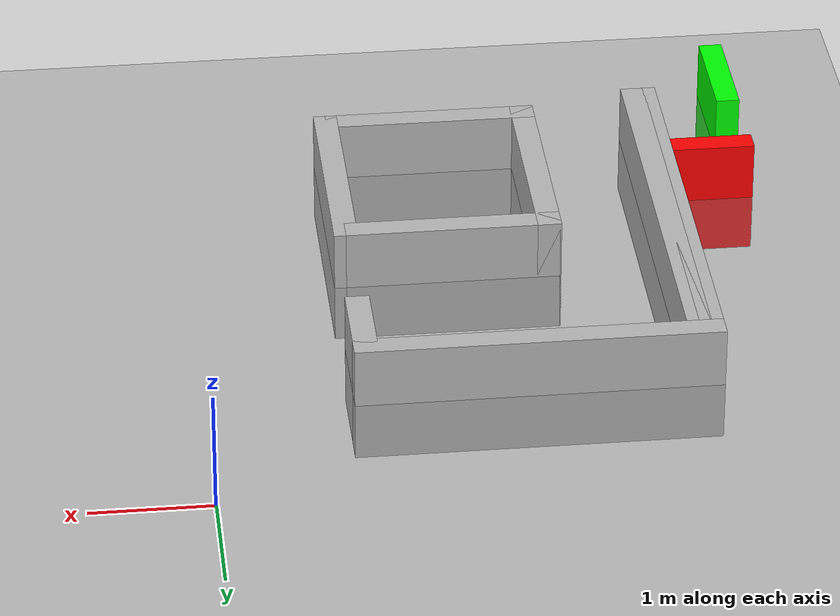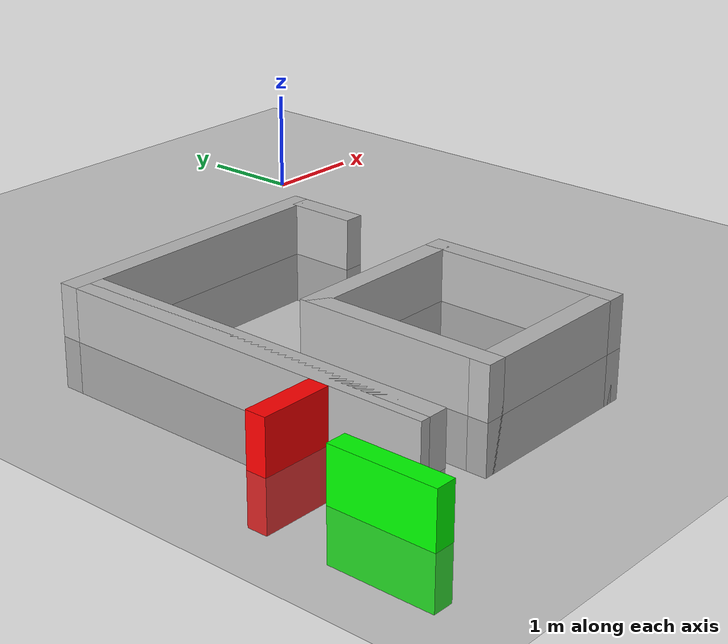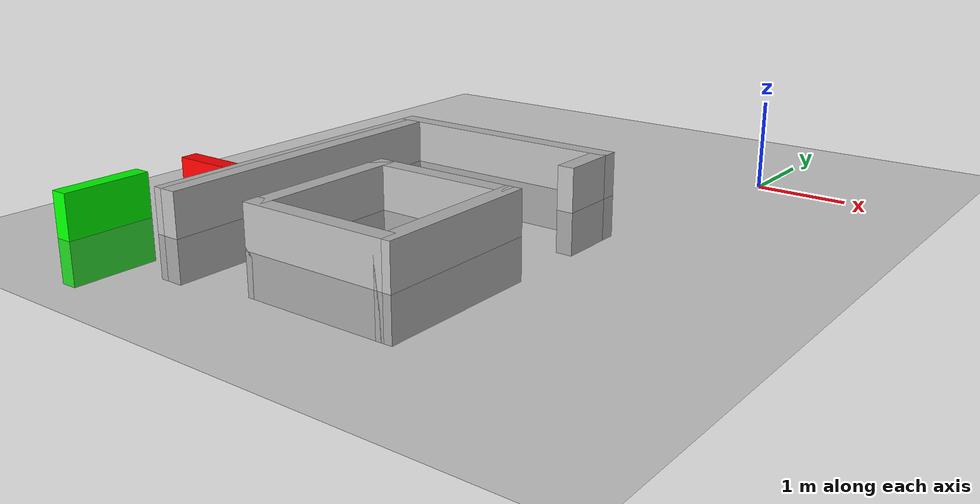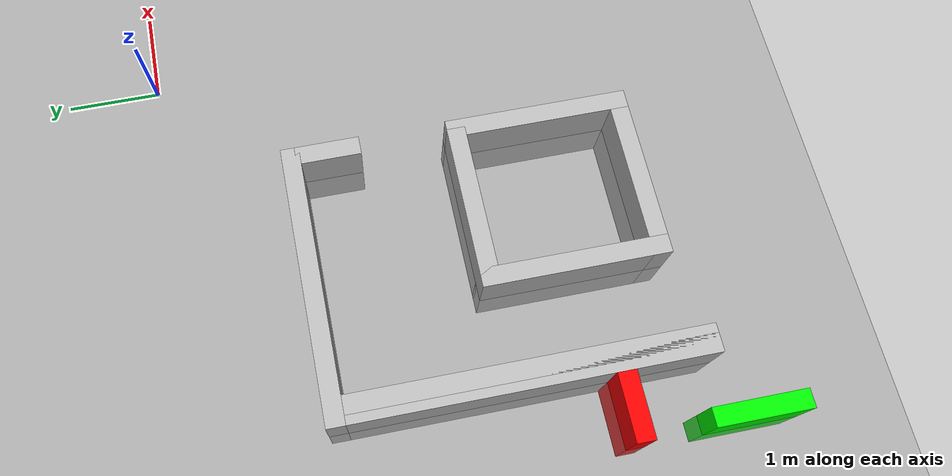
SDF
<?xml version="1.0"?>
<sdf version="1.8">
  <world name="open_maze">

      <!-- ================== Gazebo Core Systems ================== -->
      <plugin filename="gz-sim-physics-system" name="gz::sim::systems::Physics"/>
      <plugin filename="gz-sim-user-commands-system" name="gz::sim::systems::UserCommands"/>
      <plugin filename="gz-sim-scene-broadcaster-system" name="gz::sim::systems::SceneBroadcaster"/>
      <plugin filename="gz-sim-sensors-system" name="gz::sim::systems::Sensors">
        <render_engine>ogre2</render_engine>
      </plugin>
      <plugin filename="gz-sim-imu-system" name="gz::sim::systems::Imu"/>

      <!-- ================== Ground Plane ================== -->
      <model name="ground">
        <static>true</static>
        <link name="ground_link">
          <collision name="ground_collision">
            <geometry>
              <plane>
                <normal>0 0 1</normal>
                <size>20 20</size>
              </plane>
            </geometry>
          </collision>
          <visual name="ground_visual">
            <geometry>
              <plane>
                <normal>0 0 1</normal>
                <size>20 20</size>
              </plane>
            </geometry>
            <material>
              <ambient>0.5 0.5 0.5 1</ambient>
              <diffuse>0.5 0.5 0.5 1</diffuse>
            </material>
          </visual>
        </link>
      </model>

      <!-- ================== Sun Light ================== -->
      <light name="sun" type="directional">
        <cast_shadows>true</cast_shadows>
        <pose>0 0 10 0 -0 0</pose>
        <diffuse>0.8 0.8 0.8 1</diffuse>
        <specular>0.1 0.1 0.1 1</specular>
        <direction>-0.5 0.5 -1</direction>
      </light>

      <!-- Inner maze walls (all connected to boundary).             -->

      <!-- ================== Inner Wall 1 ================== -->
      <model name="inner_wall1">
        <pose>-4 -3.4 0 0 0 1.5708</pose> <!-- rotate 90° -->
        <static>true</static>
        <link name="link">
          <collision name="collision">
            <geometry><box><size>3.8 0.2 1</size></box></geometry>
          </collision>
          <visual name="visual">
            <geometry><box><size>3.8 0.2 1</size></box></geometry>
          </visual>
        </link>
      </model>

      <!-- ================== Inner Wall 2 ================== -->
      <model name="inner_wall2">
        <pose>-2.7 -1.4 0 0 0 0</pose>
        <static>true</static>
        <link name="link">
          <collision name="collision">
            <geometry><box><size>3 0.2 1</size></box></geometry>
          </collision>
          <visual name="visual">
            <geometry><box><size>3 0.2 1</size></box></geometry>
          </visual>
        </link>
      </model>

      <!-- ================== Inner Wall 3 ================== -->
      <model name="inner_wall3">
        <pose>-4.1 -3.4 0 0 0 1.5708</pose> <!-- rotate 90° -->
        <static>true</static>
        <link name="link">
          <collision name="collision">
            <geometry><box><size>3.8 0.2 1</size></box></geometry>
          </collision>
          <visual name="visual">
            <geometry><box><size>3.8 0.2 1</size></box></geometry>
          </visual>
        </link>
      </model>

      <!-- ================== Inner Wall 6 ================== -->
      <model name="inner_wall6">
        <pose>-1.3 -1.8 0 0 0 1.5708</pose> <!-- rotate 90° -->
        <static>true</static>
        <link name="link">
          <collision name="collision">
            <geometry><box><size>0.7 0.2 1</size></box></geometry>
          </collision>
          <visual name="visual">
            <geometry><box><size>0.7 0.2 1</size></box></geometry>
          </visual>
        </link>
      </model>

      <!-- ================== Inner Wall 7 ================== -->
      <model name="inner_wall7">
        <pose>-1.3 -4.1 0 0 0 1.5708</pose> <!-- rotate 90° -->
        <static>true</static>
        <link name="link">
          <collision name="collision">
            <geometry><box><size>2 0.2 1</size></box></geometry>
          </collision>
          <visual name="visual">
            <geometry><box><size>2 0.2 1</size></box></geometry>
          </visual>
        </link>
      </model>

      <!-- ================== Inner Wall 8 ================== -->
      <model name="inner_wall8">
        <pose>-2.2 -3.2 0 0 0 0</pose>
        <static>true</static>
        <link name="link">
          <collision name="collision">
            <geometry><box><size>1.8 0.2 1</size></box></geometry>
          </collision>
          <visual name="visual">
            <geometry><box><size>1.8 0.2 1</size></box></geometry>
          </visual>
        </link>
      </model>

      <!-- ================== Inner Wall 9 ================== -->
      <model name="inner_wall9">
        <pose>-3.0 -4.1 0 0 0 1.5708</pose> <!-- rotate 90° -->
        <static>true</static>
        <link name="link">
          <collision name="collision">
            <geometry><box><size>2 0.2 1</size></box></geometry>
          </collision>
          <visual name="visual">
            <geometry><box><size>2 0.2 1</size></box></geometry>
          </visual>
        </link>
      </model>

      <!-- ================== Inner Wall 12 ================== -->
      <model name="inner_wall12">
        <pose>-2.2 -5.0 0 0 0 0</pose>
        <static>true</static>
        <link name="link">
          <collision name="collision">
            <geometry><box><size>1.8 0.2 1</size></box></geometry>
          </collision>
          <visual name="visual">
            <geometry><box><size>1.8 0.2 1</size></box></geometry>
          </visual>
        </link>
      </model>

      <!-- ================== Finish Wall ================== -->
      <model name="finish_wall">
        <pose>-4.8 -5.5 0 0 0 1.5708</pose>
        <static>true</static>
        <link name="link">
          <collision name="collision">
            <geometry><box><size>1 0.2 1</size></box></geometry>
          </collision>
          <visual name="visual">
            <geometry><box><size>1 0.2 1</size></box></geometry>
            <material>
              <ambient>0 1 0 1</ambient>
              <diffuse>0 1 0 1</diffuse>
              <specular>0.1 0.1 0.1 1</specular>
              <emissive>0 0.3 0 1</emissive>
            </material>
          </visual>
        </link>
      </model>

      <!-- ================== Start Wall ================== -->
      <model name="start_wall">
        <pose>-4.55 -4.3 0 0 0 0</pose>
        <static>true</static>
        <link name="link">
          <collision name="collision">
            <geometry><box><size>0.7 0.2 1</size></box></geometry>
          </collision>
          <visual name="visual">
            <geometry><box><size>0.7 0.2 1</size></box></geometry>
            <material>
              <ambient>1 0 0 1</ambient>
              <diffuse>1 0 0 1</diffuse>
              <specular>0.1 0.1 0.1 1</specular>
              <emissive>0.3 0 0 1</emissive>
            </material>
          </visual>
        </link>
      </model>

  </world>
</sdf>
